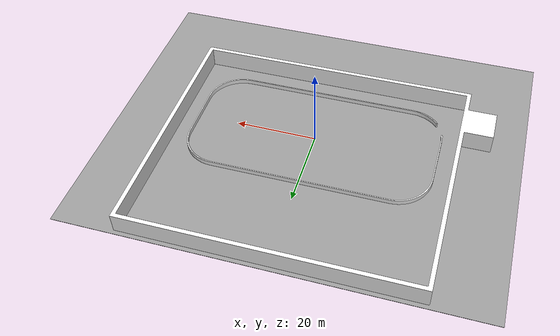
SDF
<?xml version="1.0" ?>
<sdf version="1.8">
  <world name="ice_rink">

    <scene>
      <grid>false</grid>
    </scene>

    <physics name="1ms" type="ignored">
      <max_step_size>0.001</max_step_size>
      <real_time_factor>1.0</real_time_factor>
    </physics>

    <plugin
      filename="gz-sim-physics-system"
      name="gz::sim::systems::Physics">
    </plugin>
    <plugin
      filename="gz-sim-user-commands-system"
      name="gz::sim::systems::UserCommands">
    </plugin>
    <plugin
      filename="gz-sim-scene-broadcaster-system"
      name="gz::sim::systems::SceneBroadcaster">
    </plugin>

    <plugin filename="libgz-sim-imu-system.so" name="gz::sim::systems::Imu"/>

    <plugin filename="libgz-sim-sensors-system.so" name="gz::sim::systems::Sensors">
      <render_engine>ogre2</render_engine>
    </plugin>

    <light type="directional" name="sun">
      <cast_shadows>true</cast_shadows>
      <pose>0 0 10 0 0 0</pose>
      <diffuse>0.8 0.8 0.8 1</diffuse>
      <specular>0.2 0.2 0.2 1</specular>
      <attenuation>
        <range>1000</range>
        <constant>0.9</constant>
        <linear>0.01</linear>
        <quadratic>0.001</quadratic>
      </attenuation>
      <direction>-0.5 0.1 -0.9</direction>
    </light>

   <model name="ice_sheet">
      <static>true</static>
      <pose>0 0 0.001 0 0 0</pose> <link name="link">
        <collision name="collision">
          <geometry>
            <plane>
              <normal>0 0 1</normal>
              <size>60 30</size>
            </plane>
          </geometry>
          <surface>
            <friction>
              <ode>
                <mu>0.33</mu> <mu2>0.33</mu2>
              </ode>
            </friction>
          </surface>
        </collision>
        <visual name="visual">
          <geometry>
            <plane>
              <normal>0 0 1</normal>
              <size>60 30</size>
            </plane>
          </geometry>
          <material>
            <ambient>1.0 1.0 1.0 1.0</ambient>
            <diffuse>1.0 1.0 1.0 1.0</diffuse>
            <specular>0.5 0.5 0.5 1.0</specular>
            <pbr>
              <metal>
                <albedo_map>model://ice_resurfacer_gazebo/materials/textures/Hockeyrink_IIHF.png</albedo_map>
                <roughness>0.1</roughness>
                <metalness>0.0</metalness>
              </metal>
            </pbr>
          </material>
        </visual>
      </link>
    </model>

    <model name="hall_concrete_floor">
      <static>true</static>
      <pose>0 0 0 0 0 0</pose> <link name="link">
        <collision name="collision">
          <geometry>
            <plane>
              <normal>0 0 1</normal>
              <size>100 80</size> </plane>
          </geometry>
          <surface>
            <friction>
              <ode>
                <mu>0.8</mu> <mu2>0.8</mu2>
              </ode>
            </friction>
          </surface>
        </collision>
        <visual name="visual">
          <geometry>
            <plane>
              <normal>0 0 1</normal>
              <size>100 80</size>
            </plane>
          </geometry>
          <material>
            <ambient>0.6 0.6 0.6 1.0</ambient>
            <diffuse>0.6 0.6 0.6 1.0</diffuse>
            <specular>0.1 0.1 0.1 1.0</specular>
          </material>
        </visual>
      </link>
    </model>

    <model name="rink_mesh">
      <static>true</static>
      <pose>0 0 0 0 0 0</pose>
      <link name="link">

        <visual name="rink_visual">
          <geometry>
            <mesh>
              <uri>model://ice_resurfacer_gazebo/meshes/rink_and_walls.stl</uri>
              <scale>1 1 1</scale>
            </mesh>
          </geometry>
          <material>
            <ambient>1.0 1.0 1.0 1.0</ambient>
            <diffuse>1.0 1.0 1.0 1.0</diffuse>
          </material>
        </visual>
        <collision name="rink_collision">
          <geometry>
            <mesh>
              <uri>model://ice_resurfacer_gazebo/meshes/rink_and_walls.stl</uri>
              <scale>1 1 1</scale>
            </mesh>
          </geometry>
        </collision>

      </link>
    </model>
  </world>
</sdf>
